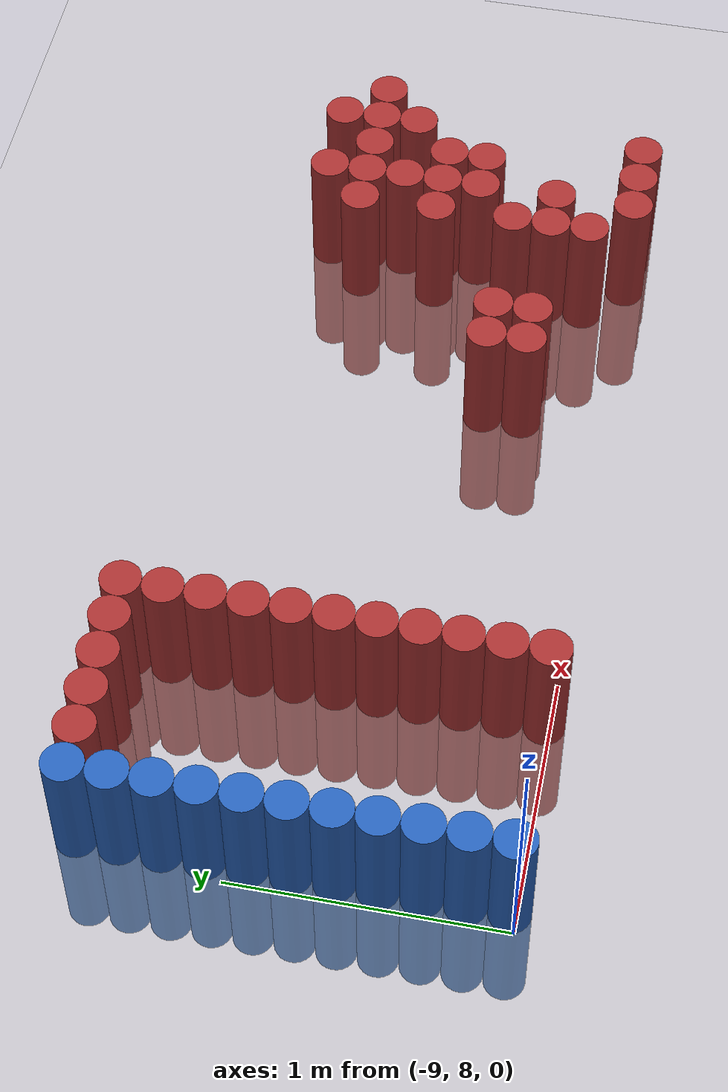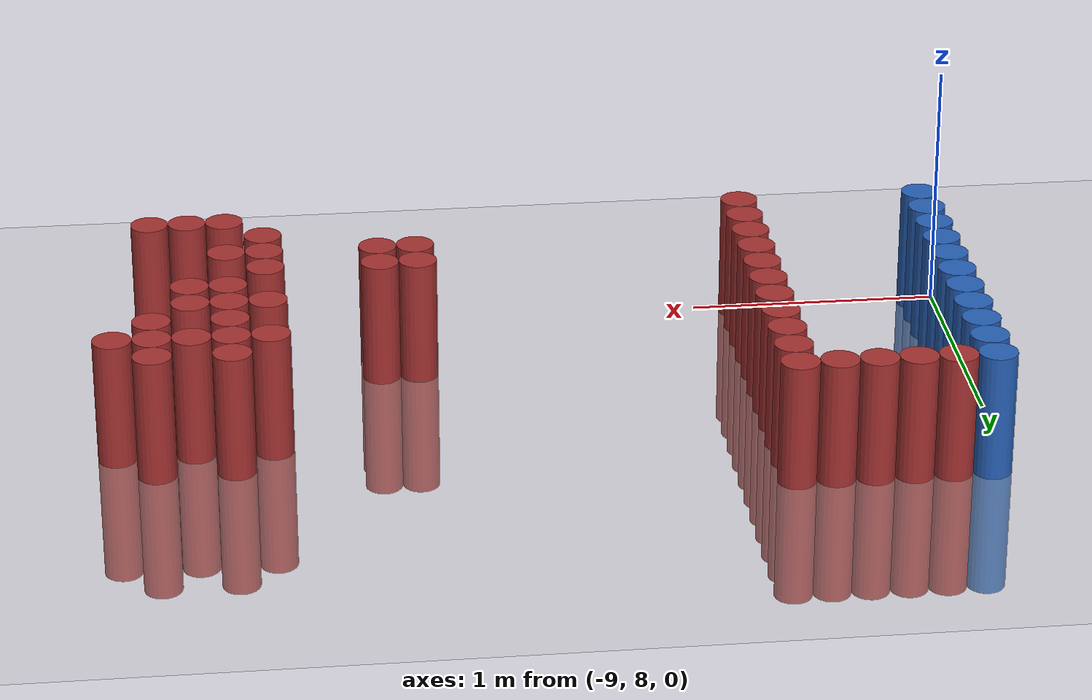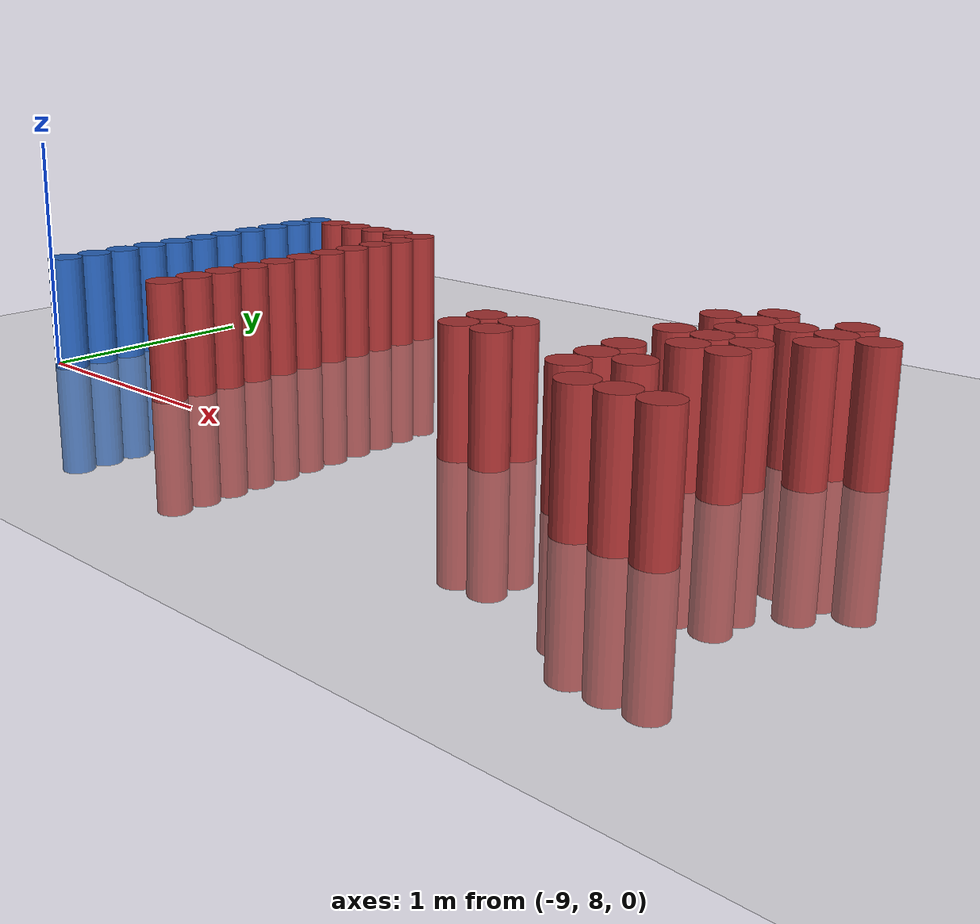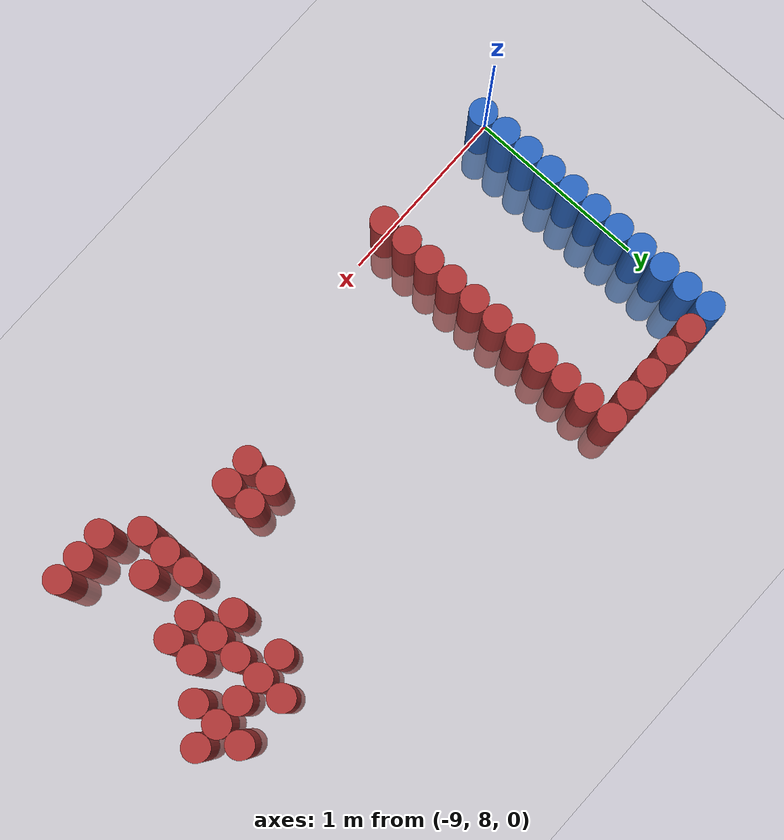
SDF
<sdf version="1.6">
 <world name="default">
  <model name="ground_plane">
   <static>1</static>
   <link name="link">
    <collision name="collision">
     <geometry><plane><normal>0 0 1</normal><size>100 100</size></plane></geometry>
     <surface><friction><ode><mu>100</mu><mu2>50</mu2></ode></friction></surface>
    </collision>
    <visual name="visual">
     <cast_shadows>0</cast_shadows>
     <geometry><plane><normal>0 0 1</normal><size>100 100</size></plane></geometry>
     <material>
      <script><uri>file://media/materials/scripts/gazebo.material</uri><name>Gazebo/Grey</name></script>
     </material>
    </visual>
   </link>
  </model>
  <model name="unit_cylinder_144">
   <static>1</static>
   <pose>-8.925000 8.025000 0.000000 0.000000 0.000000 0.000000</pose>
   <link name="link">
    <inertial>
     <mass>1</mass>
     <inertia><ixx>0.145833</ixx><ixy>0</ixy><ixz>0</ixz><iyy>0.145833</iyy><iyz>0</iyz><izz>0.125</izz></inertia>
    </inertial>
    <collision name="collision">
     <geometry><cylinder><radius>0.075000</radius><length>1</length></cylinder></geometry>
    </collision>
    <visual name="visual">
     <geometry><cylinder><radius>0.075000</radius><length>1</length></cylinder></geometry>
     <material>
      <ambient>0.152000 0.379000 0.720000 1</ambient>
      <diffuse>0.152000 0.379000 0.720000 1</diffuse>
     </material>
     <material>
      <script><name>Gazebo/Grey</name><uri>file://media/materials/scripts/gazebo.material</uri></script>
     </material>
    </visual>
   </link>
  </model>
  <model name="unit_cylinder_145">
   <static>1</static>
   <pose>-8.925000 8.175000 0.000000 0.000000 0.000000 0.000000</pose>
   <link name="link">
    <inertial>
     <mass>1</mass>
     <inertia><ixx>0.145833</ixx><ixy>0</ixy><ixz>0</ixz><iyy>0.145833</iyy><iyz>0</iyz><izz>0.125</izz></inertia>
    </inertial>
    <collision name="collision">
     <geometry><cylinder><radius>0.075000</radius><length>1</length></cylinder></geometry>
    </collision>
    <visual name="visual">
     <geometry><cylinder><radius>0.075000</radius><length>1</length></cylinder></geometry>
     <material>
      <ambient>0.152000 0.379000 0.720000 1</ambient>
      <diffuse>0.152000 0.379000 0.720000 1</diffuse>
     </material>
     <material>
      <script><name>Gazebo/Grey</name><uri>file://media/materials/scripts/gazebo.material</uri></script>
     </material>
    </visual>
   </link>
  </model>
  <model name="unit_cylinder_146">
   <static>1</static>
   <pose>-8.925000 8.325000 0.000000 0.000000 0.000000 0.000000</pose>
   <link name="link">
    <inertial>
     <mass>1</mass>
     <inertia><ixx>0.145833</ixx><ixy>0</ixy><ixz>0</ixz><iyy>0.145833</iyy><iyz>0</iyz><izz>0.125</izz></inertia>
    </inertial>
    <collision name="collision">
     <geometry><cylinder><radius>0.075000</radius><length>1</length></cylinder></geometry>
    </collision>
    <visual name="visual">
     <geometry><cylinder><radius>0.075000</radius><length>1</length></cylinder></geometry>
     <material>
      <ambient>0.152000 0.379000 0.720000 1</ambient>
      <diffuse>0.152000 0.379000 0.720000 1</diffuse>
     </material>
     <material>
      <script><name>Gazebo/Grey</name><uri>file://media/materials/scripts/gazebo.material</uri></script>
     </material>
    </visual>
   </link>
  </model>
  <model name="unit_cylinder_147">
   <static>1</static>
   <pose>-8.925000 8.475000 0.000000 0.000000 0.000000 0.000000</pose>
   <link name="link">
    <inertial>
     <mass>1</mass>
     <inertia><ixx>0.145833</ixx><ixy>0</ixy><ixz>0</ixz><iyy>0.145833</iyy><iyz>0</iyz><izz>0.125</izz></inertia>
    </inertial>
    <collision name="collision">
     <geometry><cylinder><radius>0.075000</radius><length>1</length></cylinder></geometry>
    </collision>
    <visual name="visual">
     <geometry><cylinder><radius>0.075000</radius><length>1</length></cylinder></geometry>
     <material>
      <ambient>0.152000 0.379000 0.720000 1</ambient>
      <diffuse>0.152000 0.379000 0.720000 1</diffuse>
     </material>
     <material>
      <script><name>Gazebo/Grey</name><uri>file://media/materials/scripts/gazebo.material</uri></script>
     </material>
    </visual>
   </link>
  </model>
  <model name="unit_cylinder_148">
   <static>1</static>
   <pose>-8.925000 8.625000 0.000000 0.000000 0.000000 0.000000</pose>
   <link name="link">
    <inertial>
     <mass>1</mass>
     <inertia><ixx>0.145833</ixx><ixy>0</ixy><ixz>0</ixz><iyy>0.145833</iyy><iyz>0</iyz><izz>0.125</izz></inertia>
    </inertial>
    <collision name="collision">
     <geometry><cylinder><radius>0.075000</radius><length>1</length></cylinder></geometry>
    </collision>
    <visual name="visual">
     <geometry><cylinder><radius>0.075000</radius><length>1</length></cylinder></geometry>
     <material>
      <ambient>0.152000 0.379000 0.720000 1</ambient>
      <diffuse>0.152000 0.379000 0.720000 1</diffuse>
     </material>
     <material>
      <script><name>Gazebo/Grey</name><uri>file://media/materials/scripts/gazebo.material</uri></script>
     </material>
    </visual>
   </link>
  </model>
  <model name="unit_cylinder_149">
   <static>1</static>
   <pose>-8.925000 8.775000 0.000000 0.000000 0.000000 0.000000</pose>
   <link name="link">
    <inertial>
     <mass>1</mass>
     <inertia><ixx>0.145833</ixx><ixy>0</ixy><ixz>0</ixz><iyy>0.145833</iyy><iyz>0</iyz><izz>0.125</izz></inertia>
    </inertial>
    <collision name="collision">
     <geometry><cylinder><radius>0.075000</radius><length>1</length></cylinder></geometry>
    </collision>
    <visual name="visual">
     <geometry><cylinder><radius>0.075000</radius><length>1</length></cylinder></geometry>
     <material>
      <ambient>0.152000 0.379000 0.720000 1</ambient>
      <diffuse>0.152000 0.379000 0.720000 1</diffuse>
     </material>
     <material>
      <script><name>Gazebo/Grey</name><uri>file://media/materials/scripts/gazebo.material</uri></script>
     </material>
    </visual>
   </link>
  </model>
  <model name="unit_cylinder_150">
   <static>1</static>
   <pose>-8.925000 8.925000 0.000000 0.000000 0.000000 0.000000</pose>
   <link name="link">
    <inertial>
     <mass>1</mass>
     <inertia><ixx>0.145833</ixx><ixy>0</ixy><ixz>0</ixz><iyy>0.145833</iyy><iyz>0</iyz><izz>0.125</izz></inertia>
    </inertial>
    <collision name="collision">
     <geometry><cylinder><radius>0.075000</radius><length>1</length></cylinder></geometry>
    </collision>
    <visual name="visual">
     <geometry><cylinder><radius>0.075000</radius><length>1</length></cylinder></geometry>
     <material>
      <ambient>0.152000 0.379000 0.720000 1</ambient>
      <diffuse>0.152000 0.379000 0.720000 1</diffuse>
     </material>
     <material>
      <script><name>Gazebo/Grey</name><uri>file://media/materials/scripts/gazebo.material</uri></script>
     </material>
    </visual>
   </link>
  </model>
  <model name="unit_cylinder_151">
   <static>1</static>
   <pose>-8.925000 9.075000 0.000000 0.000000 0.000000 0.000000</pose>
   <link name="link">
    <inertial>
     <mass>1</mass>
     <inertia><ixx>0.145833</ixx><ixy>0</ixy><ixz>0</ixz><iyy>0.145833</iyy><iyz>0</iyz><izz>0.125</izz></inertia>
    </inertial>
    <collision name="collision">
     <geometry><cylinder><radius>0.075000</radius><length>1</length></cylinder></geometry>
    </collision>
    <visual name="visual">
     <geometry><cylinder><radius>0.075000</radius><length>1</length></cylinder></geometry>
     <material>
      <ambient>0.152000 0.379000 0.720000 1</ambient>
      <diffuse>0.152000 0.379000 0.720000 1</diffuse>
     </material>
     <material>
      <script><name>Gazebo/Grey</name><uri>file://media/materials/scripts/gazebo.material</uri></script>
     </material>
    </visual>
   </link>
  </model>
  <model name="unit_cylinder_152">
   <static>1</static>
   <pose>-8.925000 9.225000 0.000000 0.000000 0.000000 0.000000</pose>
   <link name="link">
    <inertial>
     <mass>1</mass>
     <inertia><ixx>0.145833</ixx><ixy>0</ixy><ixz>0</ixz><iyy>0.145833</iyy><iyz>0</iyz><izz>0.125</izz></inertia>
    </inertial>
    <collision name="collision">
     <geometry><cylinder><radius>0.075000</radius><length>1</length></cylinder></geometry>
    </collision>
    <visual name="visual">
     <geometry><cylinder><radius>0.075000</radius><length>1</length></cylinder></geometry>
     <material>
      <ambient>0.152000 0.379000 0.720000 1</ambient>
      <diffuse>0.152000 0.379000 0.720000 1</diffuse>
     </material>
     <material>
      <script><name>Gazebo/Grey</name><uri>file://media/materials/scripts/gazebo.material</uri></script>
     </material>
    </visual>
   </link>
  </model>
  <model name="unit_cylinder_153">
   <static>1</static>
   <pose>-8.925000 9.375000 0.000000 0.000000 0.000000 0.000000</pose>
   <link name="link">
    <inertial>
     <mass>1</mass>
     <inertia><ixx>0.145833</ixx><ixy>0</ixy><ixz>0</ixz><iyy>0.145833</iyy><iyz>0</iyz><izz>0.125</izz></inertia>
    </inertial>
    <collision name="collision">
     <geometry><cylinder><radius>0.075000</radius><length>1</length></cylinder></geometry>
    </collision>
    <visual name="visual">
     <geometry><cylinder><radius>0.075000</radius><length>1</length></cylinder></geometry>
     <material>
      <ambient>0.152000 0.379000 0.720000 1</ambient>
      <diffuse>0.152000 0.379000 0.720000 1</diffuse>
     </material>
     <material>
      <script><name>Gazebo/Grey</name><uri>file://media/materials/scripts/gazebo.material</uri></script>
     </material>
    </visual>
   </link>
  </model>
  <model name="unit_cylinder_154">
   <static>1</static>
   <pose>-8.925000 9.525000 0.000000 0.000000 0.000000 0.000000</pose>
   <link name="link">
    <inertial>
     <mass>1</mass>
     <inertia><ixx>0.145833</ixx><ixy>0</ixy><ixz>0</ixz><iyy>0.145833</iyy><iyz>0</iyz><izz>0.125</izz></inertia>
    </inertial>
    <collision name="collision">
     <geometry><cylinder><radius>0.075000</radius><length>1</length></cylinder></geometry>
    </collision>
    <visual name="visual">
     <geometry><cylinder><radius>0.075000</radius><length>1</length></cylinder></geometry>
     <material>
      <ambient>0.152000 0.379000 0.720000 1</ambient>
      <diffuse>0.152000 0.379000 0.720000 1</diffuse>
     </material>
     <material>
      <script><name>Gazebo/Grey</name><uri>file://media/materials/scripts/gazebo.material</uri></script>
     </material>
    </visual>
   </link>
  </model>
  <model name="unit_cylinder_156">
   <static>1</static>
   <pose>-8.775000 9.525000 0.000000 0.000000 0.000000 0.000000</pose>
   <link name="link">
    <inertial>
     <mass>1</mass>
     <inertia><ixx>0.145833</ixx><ixy>0</ixy><ixz>0</ixz><iyy>0.145833</iyy><iyz>0</iyz><izz>0.125</izz></inertia>
    </inertial>
    <collision name="collision">
     <geometry><cylinder><radius>0.075000</radius><length>1</length></cylinder></geometry>
    </collision>
    <visual name="visual">
     <geometry><cylinder><radius>0.075000</radius><length>1</length></cylinder></geometry>
     <material>
      <ambient>0.648000 0.192000 0.192000 1</ambient>
      <diffuse>0.648000 0.192000 0.192000 1</diffuse>
     </material>
     <material>
      <script><name>Gazebo/Grey</name><uri>file://media/materials/scripts/gazebo.material</uri></script>
     </material>
    </visual>
   </link>
  </model>
  <model name="unit_cylinder_158">
   <static>1</static>
   <pose>-8.625000 9.525000 0.000000 0.000000 0.000000 0.000000</pose>
   <link name="link">
    <inertial>
     <mass>1</mass>
     <inertia><ixx>0.145833</ixx><ixy>0</ixy><ixz>0</ixz><iyy>0.145833</iyy><iyz>0</iyz><izz>0.125</izz></inertia>
    </inertial>
    <collision name="collision">
     <geometry><cylinder><radius>0.075000</radius><length>1</length></cylinder></geometry>
    </collision>
    <visual name="visual">
     <geometry><cylinder><radius>0.075000</radius><length>1</length></cylinder></geometry>
     <material>
      <ambient>0.648000 0.192000 0.192000 1</ambient>
      <diffuse>0.648000 0.192000 0.192000 1</diffuse>
     </material>
     <material>
      <script><name>Gazebo/Grey</name><uri>file://media/materials/scripts/gazebo.material</uri></script>
     </material>
    </visual>
   </link>
  </model>
  <model name="unit_cylinder_160">
   <static>1</static>
   <pose>-8.475000 9.525000 0.000000 0.000000 0.000000 0.000000</pose>
   <link name="link">
    <inertial>
     <mass>1</mass>
     <inertia><ixx>0.145833</ixx><ixy>0</ixy><ixz>0</ixz><iyy>0.145833</iyy><iyz>0</iyz><izz>0.125</izz></inertia>
    </inertial>
    <collision name="collision">
     <geometry><cylinder><radius>0.075000</radius><length>1</length></cylinder></geometry>
    </collision>
    <visual name="visual">
     <geometry><cylinder><radius>0.075000</radius><length>1</length></cylinder></geometry>
     <material>
      <ambient>0.648000 0.192000 0.192000 1</ambient>
      <diffuse>0.648000 0.192000 0.192000 1</diffuse>
     </material>
     <material>
      <script><name>Gazebo/Grey</name><uri>file://media/materials/scripts/gazebo.material</uri></script>
     </material>
    </visual>
   </link>
  </model>
  <model name="unit_cylinder_162">
   <static>1</static>
   <pose>-8.325000 9.525000 0.000000 0.000000 0.000000 0.000000</pose>
   <link name="link">
    <inertial>
     <mass>1</mass>
     <inertia><ixx>0.145833</ixx><ixy>0</ixy><ixz>0</ixz><iyy>0.145833</iyy><iyz>0</iyz><izz>0.125</izz></inertia>
    </inertial>
    <collision name="collision">
     <geometry><cylinder><radius>0.075000</radius><length>1</length></cylinder></geometry>
    </collision>
    <visual name="visual">
     <geometry><cylinder><radius>0.075000</radius><length>1</length></cylinder></geometry>
     <material>
      <ambient>0.648000 0.192000 0.192000 1</ambient>
      <diffuse>0.648000 0.192000 0.192000 1</diffuse>
     </material>
     <material>
      <script><name>Gazebo/Grey</name><uri>file://media/materials/scripts/gazebo.material</uri></script>
     </material>
    </visual>
   </link>
  </model>
  <model name="unit_cylinder_171">
   <static>1</static>
   <pose>-8.175000 8.025000 0.000000 0.000000 0.000000 0.000000</pose>
   <link name="link">
    <inertial>
     <mass>1</mass>
     <inertia><ixx>0.145833</ixx><ixy>0</ixy><ixz>0</ixz><iyy>0.145833</iyy><iyz>0</iyz><izz>0.125</izz></inertia>
    </inertial>
    <collision name="collision">
     <geometry><cylinder><radius>0.075000</radius><length>1</length></cylinder></geometry>
    </collision>
    <visual name="visual">
     <geometry><cylinder><radius>0.075000</radius><length>1</length></cylinder></geometry>
     <material>
      <ambient>0.648000 0.192000 0.192000 1</ambient>
      <diffuse>0.648000 0.192000 0.192000 1</diffuse>
     </material>
     <material>
      <script><name>Gazebo/Grey</name><uri>file://media/materials/scripts/gazebo.material</uri></script>
     </material>
    </visual>
   </link>
  </model>
  <model name="unit_cylinder_172">
   <static>1</static>
   <pose>-8.175000 8.175000 0.000000 0.000000 0.000000 0.000000</pose>
   <link name="link">
    <inertial>
     <mass>1</mass>
     <inertia><ixx>0.145833</ixx><ixy>0</ixy><ixz>0</ixz><iyy>0.145833</iyy><iyz>0</iyz><izz>0.125</izz></inertia>
    </inertial>
    <collision name="collision">
     <geometry><cylinder><radius>0.075000</radius><length>1</length></cylinder></geometry>
    </collision>
    <visual name="visual">
     <geometry><cylinder><radius>0.075000</radius><length>1</length></cylinder></geometry>
     <material>
      <ambient>0.648000 0.192000 0.192000 1</ambient>
      <diffuse>0.648000 0.192000 0.192000 1</diffuse>
     </material>
     <material>
      <script><name>Gazebo/Grey</name><uri>file://media/materials/scripts/gazebo.material</uri></script>
     </material>
    </visual>
   </link>
  </model>
  <model name="unit_cylinder_173">
   <static>1</static>
   <pose>-8.175000 8.325000 0.000000 0.000000 0.000000 0.000000</pose>
   <link name="link">
    <inertial>
     <mass>1</mass>
     <inertia><ixx>0.145833</ixx><ixy>0</ixy><ixz>0</ixz><iyy>0.145833</iyy><iyz>0</iyz><izz>0.125</izz></inertia>
    </inertial>
    <collision name="collision">
     <geometry><cylinder><radius>0.075000</radius><length>1</length></cylinder></geometry>
    </collision>
    <visual name="visual">
     <geometry><cylinder><radius>0.075000</radius><length>1</length></cylinder></geometry>
     <material>
      <ambient>0.648000 0.192000 0.192000 1</ambient>
      <diffuse>0.648000 0.192000 0.192000 1</diffuse>
     </material>
     <material>
      <script><name>Gazebo/Grey</name><uri>file://media/materials/scripts/gazebo.material</uri></script>
     </material>
    </visual>
   </link>
  </model>
  <model name="unit_cylinder_174">
   <static>1</static>
   <pose>-8.175000 8.475000 0.000000 0.000000 0.000000 0.000000</pose>
   <link name="link">
    <inertial>
     <mass>1</mass>
     <inertia><ixx>0.145833</ixx><ixy>0</ixy><ixz>0</ixz><iyy>0.145833</iyy><iyz>0</iyz><izz>0.125</izz></inertia>
    </inertial>
    <collision name="collision">
     <geometry><cylinder><radius>0.075000</radius><length>1</length></cylinder></geometry>
    </collision>
    <visual name="visual">
     <geometry><cylinder><radius>0.075000</radius><length>1</length></cylinder></geometry>
     <material>
      <ambient>0.648000 0.192000 0.192000 1</ambient>
      <diffuse>0.648000 0.192000 0.192000 1</diffuse>
     </material>
     <material>
      <script><name>Gazebo/Grey</name><uri>file://media/materials/scripts/gazebo.material</uri></script>
     </material>
    </visual>
   </link>
  </model>
  <model name="unit_cylinder_175">
   <static>1</static>
   <pose>-8.175000 8.625000 0.000000 0.000000 0.000000 0.000000</pose>
   <link name="link">
    <inertial>
     <mass>1</mass>
     <inertia><ixx>0.145833</ixx><ixy>0</ixy><ixz>0</ixz><iyy>0.145833</iyy><iyz>0</iyz><izz>0.125</izz></inertia>
    </inertial>
    <collision name="collision">
     <geometry><cylinder><radius>0.075000</radius><length>1</length></cylinder></geometry>
    </collision>
    <visual name="visual">
     <geometry><cylinder><radius>0.075000</radius><length>1</length></cylinder></geometry>
     <material>
      <ambient>0.648000 0.192000 0.192000 1</ambient>
      <diffuse>0.648000 0.192000 0.192000 1</diffuse>
     </material>
     <material>
      <script><name>Gazebo/Grey</name><uri>file://media/materials/scripts/gazebo.material</uri></script>
     </material>
    </visual>
   </link>
  </model>
  <model name="unit_cylinder_176">
   <static>1</static>
   <pose>-8.175000 8.775000 0.000000 0.000000 0.000000 0.000000</pose>
   <link name="link">
    <inertial>
     <mass>1</mass>
     <inertia><ixx>0.145833</ixx><ixy>0</ixy><ixz>0</ixz><iyy>0.145833</iyy><iyz>0</iyz><izz>0.125</izz></inertia>
    </inertial>
    <collision name="collision">
     <geometry><cylinder><radius>0.075000</radius><length>1</length></cylinder></geometry>
    </collision>
    <visual name="visual">
     <geometry><cylinder><radius>0.075000</radius><length>1</length></cylinder></geometry>
     <material>
      <ambient>0.648000 0.192000 0.192000 1</ambient>
      <diffuse>0.648000 0.192000 0.192000 1</diffuse>
     </material>
     <material>
      <script><name>Gazebo/Grey</name><uri>file://media/materials/scripts/gazebo.material</uri></script>
     </material>
    </visual>
   </link>
  </model>
  <model name="unit_cylinder_177">
   <static>1</static>
   <pose>-8.175000 8.925000 0.000000 0.000000 0.000000 0.000000</pose>
   <link name="link">
    <inertial>
     <mass>1</mass>
     <inertia><ixx>0.145833</ixx><ixy>0</ixy><ixz>0</ixz><iyy>0.145833</iyy><iyz>0</iyz><izz>0.125</izz></inertia>
    </inertial>
    <collision name="collision">
     <geometry><cylinder><radius>0.075000</radius><length>1</length></cylinder></geometry>
    </collision>
    <visual name="visual">
     <geometry><cylinder><radius>0.075000</radius><length>1</length></cylinder></geometry>
     <material>
      <ambient>0.648000 0.192000 0.192000 1</ambient>
      <diffuse>0.648000 0.192000 0.192000 1</diffuse>
     </material>
     <material>
      <script><name>Gazebo/Grey</name><uri>file://media/materials/scripts/gazebo.material</uri></script>
     </material>
    </visual>
   </link>
  </model>
  <model name="unit_cylinder_178">
   <static>1</static>
   <pose>-8.175000 9.075000 0.000000 0.000000 0.000000 0.000000</pose>
   <link name="link">
    <inertial>
     <mass>1</mass>
     <inertia><ixx>0.145833</ixx><ixy>0</ixy><ixz>0</ixz><iyy>0.145833</iyy><iyz>0</iyz><izz>0.125</izz></inertia>
    </inertial>
    <collision name="collision">
     <geometry><cylinder><radius>0.075000</radius><length>1</length></cylinder></geometry>
    </collision>
    <visual name="visual">
     <geometry><cylinder><radius>0.075000</radius><length>1</length></cylinder></geometry>
     <material>
      <ambient>0.648000 0.192000 0.192000 1</ambient>
      <diffuse>0.648000 0.192000 0.192000 1</diffuse>
     </material>
     <material>
      <script><name>Gazebo/Grey</name><uri>file://media/materials/scripts/gazebo.material</uri></script>
     </material>
    </visual>
   </link>
  </model>
  <model name="unit_cylinder_179">
   <static>1</static>
   <pose>-8.175000 9.225000 0.000000 0.000000 0.000000 0.000000</pose>
   <link name="link">
    <inertial>
     <mass>1</mass>
     <inertia><ixx>0.145833</ixx><ixy>0</ixy><ixz>0</ixz><iyy>0.145833</iyy><iyz>0</iyz><izz>0.125</izz></inertia>
    </inertial>
    <collision name="collision">
     <geometry><cylinder><radius>0.075000</radius><length>1</length></cylinder></geometry>
    </collision>
    <visual name="visual">
     <geometry><cylinder><radius>0.075000</radius><length>1</length></cylinder></geometry>
     <material>
      <ambient>0.648000 0.192000 0.192000 1</ambient>
      <diffuse>0.648000 0.192000 0.192000 1</diffuse>
     </material>
     <material>
      <script><name>Gazebo/Grey</name><uri>file://media/materials/scripts/gazebo.material</uri></script>
     </material>
    </visual>
   </link>
  </model>
  <model name="unit_cylinder_180">
   <static>1</static>
   <pose>-8.175000 9.375000 0.000000 0.000000 0.000000 0.000000</pose>
   <link name="link">
    <inertial>
     <mass>1</mass>
     <inertia><ixx>0.145833</ixx><ixy>0</ixy><ixz>0</ixz><iyy>0.145833</iyy><iyz>0</iyz><izz>0.125</izz></inertia>
    </inertial>
    <collision name="collision">
     <geometry><cylinder><radius>0.075000</radius><length>1</length></cylinder></geometry>
    </collision>
    <visual name="visual">
     <geometry><cylinder><radius>0.075000</radius><length>1</length></cylinder></geometry>
     <material>
      <ambient>0.648000 0.192000 0.192000 1</ambient>
      <diffuse>0.648000 0.192000 0.192000 1</diffuse>
     </material>
     <material>
      <script><name>Gazebo/Grey</name><uri>file://media/materials/scripts/gazebo.material</uri></script>
     </material>
    </visual>
   </link>
  </model>
  <model name="unit_cylinder_181">
   <static>1</static>
   <pose>-8.175000 9.525000 0.000000 0.000000 0.000000 0.000000</pose>
   <link name="link">
    <inertial>
     <mass>1</mass>
     <inertia><ixx>0.145833</ixx><ixy>0</ixy><ixz>0</ixz><iyy>0.145833</iyy><iyz>0</iyz><izz>0.125</izz></inertia>
    </inertial>
    <collision name="collision">
     <geometry><cylinder><radius>0.075000</radius><length>1</length></cylinder></geometry>
    </collision>
    <visual name="visual">
     <geometry><cylinder><radius>0.075000</radius><length>1</length></cylinder></geometry>
     <material>
      <ambient>0.648000 0.192000 0.192000 1</ambient>
      <diffuse>0.648000 0.192000 0.192000 1</diffuse>
     </material>
     <material>
      <script><name>Gazebo/Grey</name><uri>file://media/materials/scripts/gazebo.material</uri></script>
     </material>
    </visual>
   </link>
  </model>
  <model name="unit_cylinder_208">
   <static>1</static>
   <pose>-6.825000 8.325000 0.000000 0.000000 0.000000 0.000000</pose>
   <link name="link">
    <inertial>
     <mass>1</mass>
     <inertia><ixx>0.145833</ixx><ixy>0</ixy><ixz>0</ixz><iyy>0.145833</iyy><iyz>0</iyz><izz>0.125</izz></inertia>
    </inertial>
    <collision name="collision">
     <geometry><cylinder><radius>0.075000</radius><length>1</length></cylinder></geometry>
    </collision>
    <visual name="visual">
     <geometry><cylinder><radius>0.075000</radius><length>1</length></cylinder></geometry>
     <material>
      <ambient>0.648000 0.192000 0.192000 1</ambient>
      <diffuse>0.648000 0.192000 0.192000 1</diffuse>
     </material>
     <material>
      <script><name>Gazebo/Grey</name><uri>file://media/materials/scripts/gazebo.material</uri></script>
     </material>
    </visual>
   </link>
  </model>
  <model name="unit_cylinder_209">
   <static>1</static>
   <pose>-6.825000 8.475000 0.000000 0.000000 0.000000 0.000000</pose>
   <link name="link">
    <inertial>
     <mass>1</mass>
     <inertia><ixx>0.145833</ixx><ixy>0</ixy><ixz>0</ixz><iyy>0.145833</iyy><iyz>0</iyz><izz>0.125</izz></inertia>
    </inertial>
    <collision name="collision">
     <geometry><cylinder><radius>0.075000</radius><length>1</length></cylinder></geometry>
    </collision>
    <visual name="visual">
     <geometry><cylinder><radius>0.075000</radius><length>1</length></cylinder></geometry>
     <material>
      <ambient>0.648000 0.192000 0.192000 1</ambient>
      <diffuse>0.648000 0.192000 0.192000 1</diffuse>
     </material>
     <material>
      <script><name>Gazebo/Grey</name><uri>file://media/materials/scripts/gazebo.material</uri></script>
     </material>
    </visual>
   </link>
  </model>
  <model name="unit_cylinder_213">
   <static>1</static>
   <pose>-6.675000 8.325000 0.000000 0.000000 0.000000 0.000000</pose>
   <link name="link">
    <inertial>
     <mass>1</mass>
     <inertia><ixx>0.145833</ixx><ixy>0</ixy><ixz>0</ixz><iyy>0.145833</iyy><iyz>0</iyz><izz>0.125</izz></inertia>
    </inertial>
    <collision name="collision">
     <geometry><cylinder><radius>0.075000</radius><length>1</length></cylinder></geometry>
    </collision>
    <visual name="visual">
     <geometry><cylinder><radius>0.075000</radius><length>1</length></cylinder></geometry>
     <material>
      <ambient>0.648000 0.192000 0.192000 1</ambient>
      <diffuse>0.648000 0.192000 0.192000 1</diffuse>
     </material>
     <material>
      <script><name>Gazebo/Grey</name><uri>file://media/materials/scripts/gazebo.material</uri></script>
     </material>
    </visual>
   </link>
  </model>
  <model name="unit_cylinder_214">
   <static>1</static>
   <pose>-6.675000 8.475000 0.000000 0.000000 0.000000 0.000000</pose>
   <link name="link">
    <inertial>
     <mass>1</mass>
     <inertia><ixx>0.145833</ixx><ixy>0</ixy><ixz>0</ixz><iyy>0.145833</iyy><iyz>0</iyz><izz>0.125</izz></inertia>
    </inertial>
    <collision name="collision">
     <geometry><cylinder><radius>0.075000</radius><length>1</length></cylinder></geometry>
    </collision>
    <visual name="visual">
     <geometry><cylinder><radius>0.075000</radius><length>1</length></cylinder></geometry>
     <material>
      <ambient>0.648000 0.192000 0.192000 1</ambient>
      <diffuse>0.648000 0.192000 0.192000 1</diffuse>
     </material>
     <material>
      <script><name>Gazebo/Grey</name><uri>file://media/materials/scripts/gazebo.material</uri></script>
     </material>
    </visual>
   </link>
  </model>
  <model name="unit_cylinder_221">
   <static>1</static>
   <pose>-6.225000 8.175000 0.000000 0.000000 0.000000 0.000000</pose>
   <link name="link">
    <inertial>
     <mass>1</mass>
     <inertia><ixx>0.145833</ixx><ixy>0</ixy><ixz>0</ixz><iyy>0.145833</iyy><iyz>0</iyz><izz>0.125</izz></inertia>
    </inertial>
    <collision name="collision">
     <geometry><cylinder><radius>0.075000</radius><length>1</length></cylinder></geometry>
    </collision>
    <visual name="visual">
     <geometry><cylinder><radius>0.075000</radius><length>1</length></cylinder></geometry>
     <material>
      <ambient>0.648000 0.192000 0.192000 1</ambient>
      <diffuse>0.648000 0.192000 0.192000 1</diffuse>
     </material>
     <material>
      <script><name>Gazebo/Grey</name><uri>file://media/materials/scripts/gazebo.material</uri></script>
     </material>
    </visual>
   </link>
  </model>
  <model name="unit_cylinder_222">
   <static>1</static>
   <pose>-6.225000 8.325000 0.000000 0.000000 0.000000 0.000000</pose>
   <link name="link">
    <inertial>
     <mass>1</mass>
     <inertia><ixx>0.145833</ixx><ixy>0</ixy><ixz>0</ixz><iyy>0.145833</iyy><iyz>0</iyz><izz>0.125</izz></inertia>
    </inertial>
    <collision name="collision">
     <geometry><cylinder><radius>0.075000</radius><length>1</length></cylinder></geometry>
    </collision>
    <visual name="visual">
     <geometry><cylinder><radius>0.075000</radius><length>1</length></cylinder></geometry>
     <material>
      <ambient>0.648000 0.192000 0.192000 1</ambient>
      <diffuse>0.648000 0.192000 0.192000 1</diffuse>
     </material>
     <material>
      <script><name>Gazebo/Grey</name><uri>file://media/materials/scripts/gazebo.material</uri></script>
     </material>
    </visual>
   </link>
  </model>
  <model name="unit_cylinder_223">
   <static>1</static>
   <pose>-6.225000 8.475000 0.000000 0.000000 0.000000 0.000000</pose>
   <link name="link">
    <inertial>
     <mass>1</mass>
     <inertia><ixx>0.145833</ixx><ixy>0</ixy><ixz>0</ixz><iyy>0.145833</iyy><iyz>0</iyz><izz>0.125</izz></inertia>
    </inertial>
    <collision name="collision">
     <geometry><cylinder><radius>0.075000</radius><length>1</length></cylinder></geometry>
    </collision>
    <visual name="visual">
     <geometry><cylinder><radius>0.075000</radius><length>1</length></cylinder></geometry>
     <material>
      <ambient>0.648000 0.192000 0.192000 1</ambient>
      <diffuse>0.648000 0.192000 0.192000 1</diffuse>
     </material>
     <material>
      <script><name>Gazebo/Grey</name><uri>file://media/materials/scripts/gazebo.material</uri></script>
     </material>
    </visual>
   </link>
  </model>
  <model name="unit_cylinder_224">
   <static>1</static>
   <pose>-6.225000 8.775000 0.000000 0.000000 0.000000 0.000000</pose>
   <link name="link">
    <inertial>
     <mass>1</mass>
     <inertia><ixx>0.145833</ixx><ixy>0</ixy><ixz>0</ixz><iyy>0.145833</iyy><iyz>0</iyz><izz>0.125</izz></inertia>
    </inertial>
    <collision name="collision">
     <geometry><cylinder><radius>0.075000</radius><length>1</length></cylinder></geometry>
    </collision>
    <visual name="visual">
     <geometry><cylinder><radius>0.075000</radius><length>1</length></cylinder></geometry>
     <material>
      <ambient>0.648000 0.192000 0.192000 1</ambient>
      <diffuse>0.648000 0.192000 0.192000 1</diffuse>
     </material>
     <material>
      <script><name>Gazebo/Grey</name><uri>file://media/materials/scripts/gazebo.material</uri></script>
     </material>
    </visual>
   </link>
  </model>
  <model name="unit_cylinder_225">
   <static>1</static>
   <pose>-6.225000 9.075000 0.000000 0.000000 0.000000 0.000000</pose>
   <link name="link">
    <inertial>
     <mass>1</mass>
     <inertia><ixx>0.145833</ixx><ixy>0</ixy><ixz>0</ixz><iyy>0.145833</iyy><iyz>0</iyz><izz>0.125</izz></inertia>
    </inertial>
    <collision name="collision">
     <geometry><cylinder><radius>0.075000</radius><length>1</length></cylinder></geometry>
    </collision>
    <visual name="visual">
     <geometry><cylinder><radius>0.075000</radius><length>1</length></cylinder></geometry>
     <material>
      <ambient>0.648000 0.192000 0.192000 1</ambient>
      <diffuse>0.648000 0.192000 0.192000 1</diffuse>
     </material>
     <material>
      <script><name>Gazebo/Grey</name><uri>file://media/materials/scripts/gazebo.material</uri></script>
     </material>
    </visual>
   </link>
  </model>
  <model name="unit_cylinder_229">
   <static>1</static>
   <pose>-6.075000 8.025000 0.000000 0.000000 0.000000 0.000000</pose>
   <link name="link">
    <inertial>
     <mass>1</mass>
     <inertia><ixx>0.145833</ixx><ixy>0</ixy><ixz>0</ixz><iyy>0.145833</iyy><iyz>0</iyz><izz>0.125</izz></inertia>
    </inertial>
    <collision name="collision">
     <geometry><cylinder><radius>0.075000</radius><length>1</length></cylinder></geometry>
    </collision>
    <visual name="visual">
     <geometry><cylinder><radius>0.075000</radius><length>1</length></cylinder></geometry>
     <material>
      <ambient>0.648000 0.192000 0.192000 1</ambient>
      <diffuse>0.648000 0.192000 0.192000 1</diffuse>
     </material>
     <material>
      <script><name>Gazebo/Grey</name><uri>file://media/materials/scripts/gazebo.material</uri></script>
     </material>
    </visual>
   </link>
  </model>
  <model name="unit_cylinder_230">
   <static>1</static>
   <pose>-6.075000 8.325000 0.000000 0.000000 0.000000 0.000000</pose>
   <link name="link">
    <inertial>
     <mass>1</mass>
     <inertia><ixx>0.145833</ixx><ixy>0</ixy><ixz>0</ixz><iyy>0.145833</iyy><iyz>0</iyz><izz>0.125</izz></inertia>
    </inertial>
    <collision name="collision">
     <geometry><cylinder><radius>0.075000</radius><length>1</length></cylinder></geometry>
    </collision>
    <visual name="visual">
     <geometry><cylinder><radius>0.075000</radius><length>1</length></cylinder></geometry>
     <material>
      <ambient>0.648000 0.192000 0.192000 1</ambient>
      <diffuse>0.648000 0.192000 0.192000 1</diffuse>
     </material>
     <material>
      <script><name>Gazebo/Grey</name><uri>file://media/materials/scripts/gazebo.material</uri></script>
     </material>
    </visual>
   </link>
  </model>
  <model name="unit_cylinder_231">
   <static>1</static>
   <pose>-6.075000 8.625000 0.000000 0.000000 0.000000 0.000000</pose>
   <link name="link">
    <inertial>
     <mass>1</mass>
     <inertia><ixx>0.145833</ixx><ixy>0</ixy><ixz>0</ixz><iyy>0.145833</iyy><iyz>0</iyz><izz>0.125</izz></inertia>
    </inertial>
    <collision name="collision">
     <geometry><cylinder><radius>0.075000</radius><length>1</length></cylinder></geometry>
    </collision>
    <visual name="visual">
     <geometry><cylinder><radius>0.075000</radius><length>1</length></cylinder></geometry>
     <material>
      <ambient>0.648000 0.192000 0.192000 1</ambient>
      <diffuse>0.648000 0.192000 0.192000 1</diffuse>
     </material>
     <material>
      <script><name>Gazebo/Grey</name><uri>file://media/materials/scripts/gazebo.material</uri></script>
     </material>
    </visual>
   </link>
  </model>
  <model name="unit_cylinder_232">
   <static>1</static>
   <pose>-6.075000 8.775000 0.000000 0.000000 0.000000 0.000000</pose>
   <link name="link">
    <inertial>
     <mass>1</mass>
     <inertia><ixx>0.145833</ixx><ixy>0</ixy><ixz>0</ixz><iyy>0.145833</iyy><iyz>0</iyz><izz>0.125</izz></inertia>
    </inertial>
    <collision name="collision">
     <geometry><cylinder><radius>0.075000</radius><length>1</length></cylinder></geometry>
    </collision>
    <visual name="visual">
     <geometry><cylinder><radius>0.075000</radius><length>1</length></cylinder></geometry>
     <material>
      <ambient>0.648000 0.192000 0.192000 1</ambient>
      <diffuse>0.648000 0.192000 0.192000 1</diffuse>
     </material>
     <material>
      <script><name>Gazebo/Grey</name><uri>file://media/materials/scripts/gazebo.material</uri></script>
     </material>
    </visual>
   </link>
  </model>
  <model name="unit_cylinder_233">
   <static>1</static>
   <pose>-6.075000 8.925000 0.000000 0.000000 0.000000 0.000000</pose>
   <link name="link">
    <inertial>
     <mass>1</mass>
     <inertia><ixx>0.145833</ixx><ixy>0</ixy><ixz>0</ixz><iyy>0.145833</iyy><iyz>0</iyz><izz>0.125</izz></inertia>
    </inertial>
    <collision name="collision">
     <geometry><cylinder><radius>0.075000</radius><length>1</length></cylinder></geometry>
    </collision>
    <visual name="visual">
     <geometry><cylinder><radius>0.075000</radius><length>1</length></cylinder></geometry>
     <material>
      <ambient>0.648000 0.192000 0.192000 1</ambient>
      <diffuse>0.648000 0.192000 0.192000 1</diffuse>
     </material>
     <material>
      <script><name>Gazebo/Grey</name><uri>file://media/materials/scripts/gazebo.material</uri></script>
     </material>
    </visual>
   </link>
  </model>
  <model name="unit_cylinder_234">
   <static>1</static>
   <pose>-6.075000 9.075000 0.000000 0.000000 0.000000 0.000000</pose>
   <link name="link">
    <inertial>
     <mass>1</mass>
     <inertia><ixx>0.145833</ixx><ixy>0</ixy><ixz>0</ixz><iyy>0.145833</iyy><iyz>0</iyz><izz>0.125</izz></inertia>
    </inertial>
    <collision name="collision">
     <geometry><cylinder><radius>0.075000</radius><length>1</length></cylinder></geometry>
    </collision>
    <visual name="visual">
     <geometry><cylinder><radius>0.075000</radius><length>1</length></cylinder></geometry>
     <material>
      <ambient>0.648000 0.192000 0.192000 1</ambient>
      <diffuse>0.648000 0.192000 0.192000 1</diffuse>
     </material>
     <material>
      <script><name>Gazebo/Grey</name><uri>file://media/materials/scripts/gazebo.material</uri></script>
     </material>
    </visual>
   </link>
  </model>
  <model name="unit_cylinder_235">
   <static>1</static>
   <pose>-6.075000 9.225000 0.000000 0.000000 0.000000 0.000000</pose>
   <link name="link">
    <inertial>
     <mass>1</mass>
     <inertia><ixx>0.145833</ixx><ixy>0</ixy><ixz>0</ixz><iyy>0.145833</iyy><iyz>0</iyz><izz>0.125</izz></inertia>
    </inertial>
    <collision name="collision">
     <geometry><cylinder><radius>0.075000</radius><length>1</length></cylinder></geometry>
    </collision>
    <visual name="visual">
     <geometry><cylinder><radius>0.075000</radius><length>1</length></cylinder></geometry>
     <material>
      <ambient>0.648000 0.192000 0.192000 1</ambient>
      <diffuse>0.648000 0.192000 0.192000 1</diffuse>
     </material>
     <material>
      <script><name>Gazebo/Grey</name><uri>file://media/materials/scripts/gazebo.material</uri></script>
     </material>
    </visual>
   </link>
  </model>
  <model name="unit_cylinder_239">
   <static>1</static>
   <pose>-5.925000 8.025000 0.000000 0.000000 0.000000 0.000000</pose>
   <link name="link">
    <inertial>
     <mass>1</mass>
     <inertia><ixx>0.145833</ixx><ixy>0</ixy><ixz>0</ixz><iyy>0.145833</iyy><iyz>0</iyz><izz>0.125</izz></inertia>
    </inertial>
    <collision name="collision">
     <geometry><cylinder><radius>0.075000</radius><length>1</length></cylinder></geometry>
    </collision>
    <visual name="visual">
     <geometry><cylinder><radius>0.075000</radius><length>1</length></cylinder></geometry>
     <material>
      <ambient>0.648000 0.192000 0.192000 1</ambient>
      <diffuse>0.648000 0.192000 0.192000 1</diffuse>
     </material>
     <material>
      <script><name>Gazebo/Grey</name><uri>file://media/materials/scripts/gazebo.material</uri></script>
     </material>
    </visual>
   </link>
  </model>
  <model name="unit_cylinder_240">
   <static>1</static>
   <pose>-5.925000 8.625000 0.000000 0.000000 0.000000 0.000000</pose>
   <link name="link">
    <inertial>
     <mass>1</mass>
     <inertia><ixx>0.145833</ixx><ixy>0</ixy><ixz>0</ixz><iyy>0.145833</iyy><iyz>0</iyz><izz>0.125</izz></inertia>
    </inertial>
    <collision name="collision">
     <geometry><cylinder><radius>0.075000</radius><length>1</length></cylinder></geometry>
    </collision>
    <visual name="visual">
     <geometry><cylinder><radius>0.075000</radius><length>1</length></cylinder></geometry>
     <material>
      <ambient>0.648000 0.192000 0.192000 1</ambient>
      <diffuse>0.648000 0.192000 0.192000 1</diffuse>
     </material>
     <material>
      <script><name>Gazebo/Grey</name><uri>file://media/materials/scripts/gazebo.material</uri></script>
     </material>
    </visual>
   </link>
  </model>
  <model name="unit_cylinder_241">
   <static>1</static>
   <pose>-5.925000 8.775000 0.000000 0.000000 0.000000 0.000000</pose>
   <link name="link">
    <inertial>
     <mass>1</mass>
     <inertia><ixx>0.145833</ixx><ixy>0</ixy><ixz>0</ixz><iyy>0.145833</iyy><iyz>0</iyz><izz>0.125</izz></inertia>
    </inertial>
    <collision name="collision">
     <geometry><cylinder><radius>0.075000</radius><length>1</length></cylinder></geometry>
    </collision>
    <visual name="visual">
     <geometry><cylinder><radius>0.075000</radius><length>1</length></cylinder></geometry>
     <material>
      <ambient>0.648000 0.192000 0.192000 1</ambient>
      <diffuse>0.648000 0.192000 0.192000 1</diffuse>
     </material>
     <material>
      <script><name>Gazebo/Grey</name><uri>file://media/materials/scripts/gazebo.material</uri></script>
     </material>
    </visual>
   </link>
  </model>
  <model name="unit_cylinder_242">
   <static>1</static>
   <pose>-5.925000 9.075000 0.000000 0.000000 0.000000 0.000000</pose>
   <link name="link">
    <inertial>
     <mass>1</mass>
     <inertia><ixx>0.145833</ixx><ixy>0</ixy><ixz>0</ixz><iyy>0.145833</iyy><iyz>0</iyz><izz>0.125</izz></inertia>
    </inertial>
    <collision name="collision">
     <geometry><cylinder><radius>0.075000</radius><length>1</length></cylinder></geometry>
    </collision>
    <visual name="visual">
     <geometry><cylinder><radius>0.075000</radius><length>1</length></cylinder></geometry>
     <material>
      <ambient>0.648000 0.192000 0.192000 1</ambient>
      <diffuse>0.648000 0.192000 0.192000 1</diffuse>
     </material>
     <material>
      <script><name>Gazebo/Grey</name><uri>file://media/materials/scripts/gazebo.material</uri></script>
     </material>
    </visual>
   </link>
  </model>
  <model name="unit_cylinder_249">
   <static>1</static>
   <pose>-5.775000 8.025000 0.000000 0.000000 0.000000 0.000000</pose>
   <link name="link">
    <inertial>
     <mass>1</mass>
     <inertia><ixx>0.145833</ixx><ixy>0</ixy><ixz>0</ixz><iyy>0.145833</iyy><iyz>0</iyz><izz>0.125</izz></inertia>
    </inertial>
    <collision name="collision">
     <geometry><cylinder><radius>0.075000</radius><length>1</length></cylinder></geometry>
    </collision>
    <visual name="visual">
     <geometry><cylinder><radius>0.075000</radius><length>1</length></cylinder></geometry>
     <material>
      <ambient>0.648000 0.192000 0.192000 1</ambient>
      <diffuse>0.648000 0.192000 0.192000 1</diffuse>
     </material>
     <material>
      <script><name>Gazebo/Grey</name><uri>file://media/materials/scripts/gazebo.material</uri></script>
     </material>
    </visual>
   </link>
  </model>
  <model name="unit_cylinder_250">
   <static>1</static>
   <pose>-5.775000 8.925000 0.000000 0.000000 0.000000 0.000000</pose>
   <link name="link">
    <inertial>
     <mass>1</mass>
     <inertia><ixx>0.145833</ixx><ixy>0</ixy><ixz>0</ixz><iyy>0.145833</iyy><iyz>0</iyz><izz>0.125</izz></inertia>
    </inertial>
    <collision name="collision">
     <geometry><cylinder><radius>0.075000</radius><length>1</length></cylinder></geometry>
    </collision>
    <visual name="visual">
     <geometry><cylinder><radius>0.075000</radius><length>1</length></cylinder></geometry>
     <material>
      <ambient>0.648000 0.192000 0.192000 1</ambient>
      <diffuse>0.648000 0.192000 0.192000 1</diffuse>
     </material>
     <material>
      <script><name>Gazebo/Grey</name><uri>file://media/materials/scripts/gazebo.material</uri></script>
     </material>
    </visual>
   </link>
  </model>
  <model name="unit_cylinder_251">
   <static>1</static>
   <pose>-5.775000 9.075000 0.000000 0.000000 0.000000 0.000000</pose>
   <link name="link">
    <inertial>
     <mass>1</mass>
     <inertia><ixx>0.145833</ixx><ixy>0</ixy><ixz>0</ixz><iyy>0.145833</iyy><iyz>0</iyz><izz>0.125</izz></inertia>
    </inertial>
    <collision name="collision">
     <geometry><cylinder><radius>0.075000</radius><length>1</length></cylinder></geometry>
    </collision>
    <visual name="visual">
     <geometry><cylinder><radius>0.075000</radius><length>1</length></cylinder></geometry>
     <material>
      <ambient>0.648000 0.192000 0.192000 1</ambient>
      <diffuse>0.648000 0.192000 0.192000 1</diffuse>
     </material>
     <material>
      <script><name>Gazebo/Grey</name><uri>file://media/materials/scripts/gazebo.material</uri></script>
     </material>
    </visual>
   </link>
  </model>
  <model name="unit_cylinder_252">
   <static>1</static>
   <pose>-5.775000 9.225000 0.000000 0.000000 0.000000 0.000000</pose>
   <link name="link">
    <inertial>
     <mass>1</mass>
     <inertia><ixx>0.145833</ixx><ixy>0</ixy><ixz>0</ixz><iyy>0.145833</iyy><iyz>0</iyz><izz>0.125</izz></inertia>
    </inertial>
    <collision name="collision">
     <geometry><cylinder><radius>0.075000</radius><length>1</length></cylinder></geometry>
    </collision>
    <visual name="visual">
     <geometry><cylinder><radius>0.075000</radius><length>1</length></cylinder></geometry>
     <material>
      <ambient>0.648000 0.192000 0.192000 1</ambient>
      <diffuse>0.648000 0.192000 0.192000 1</diffuse>
     </material>
     <material>
      <script><name>Gazebo/Grey</name><uri>file://media/materials/scripts/gazebo.material</uri></script>
     </material>
    </visual>
   </link>
  </model>
  <model name="unit_cylinder_260">
   <static>1</static>
   <pose>-5.625000 9.075000 0.000000 0.000000 0.000000 0.000000</pose>
   <link name="link">
    <inertial>
     <mass>1</mass>
     <inertia><ixx>0.145833</ixx><ixy>0</ixy><ixz>0</ixz><iyy>0.145833</iyy><iyz>0</iyz><izz>0.125</izz></inertia>
    </inertial>
    <collision name="collision">
     <geometry><cylinder><radius>0.075000</radius><length>1</length></cylinder></geometry>
    </collision>
    <visual name="visual">
     <geometry><cylinder><radius>0.075000</radius><length>1</length></cylinder></geometry>
     <material>
      <ambient>0.648000 0.192000 0.192000 1</ambient>
      <diffuse>0.648000 0.192000 0.192000 1</diffuse>
     </material>
     <material>
      <script><name>Gazebo/Grey</name><uri>file://media/materials/scripts/gazebo.material</uri></script>
     </material>
    </visual>
   </link>
  </model>
 </world>
</sdf>
